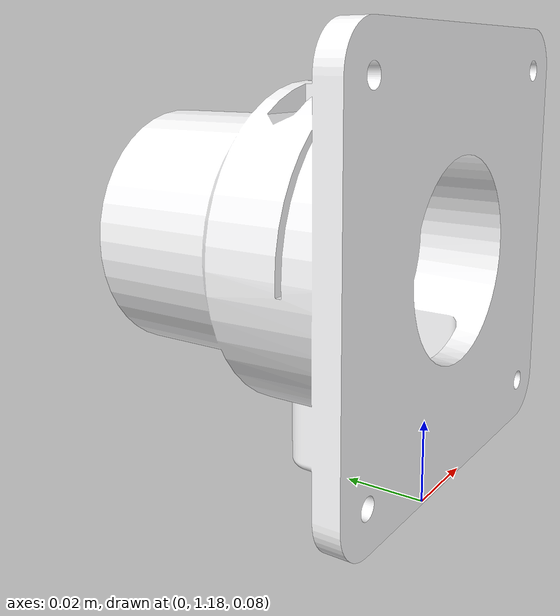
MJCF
<mujoco model="NECK_1">
  <default>
    <default class="visual">
      <geom group="2" type="mesh" contype="0" conaffinity="0"/>
    </default>
    <default class="collision">
      <geom group="3" type="mesh"/>
    </default>
  </default>
  <asset>
    <material name="254,254,255" specular="0.9973853333333333" shininess="1.0" rgba="0.996078 0.996078 1.000000 1.000000"/>
    <mesh file="NECK_1.obj"/>
  </asset>
  <worldbody>
    <body name="NECK_1">
      <geom material="254,254,255" mesh="NECK_1" class="visual"/>
      <geom mesh="NECK_1" class="collision"/>
    </body>
  </worldbody>
</mujoco>
